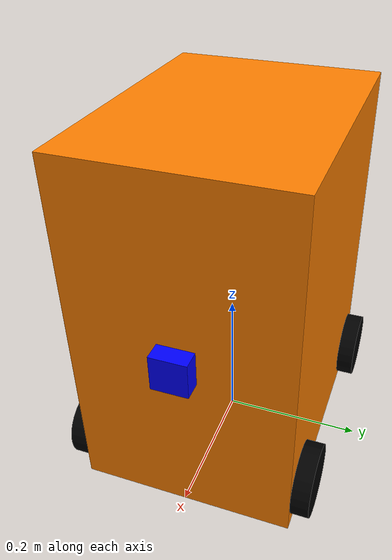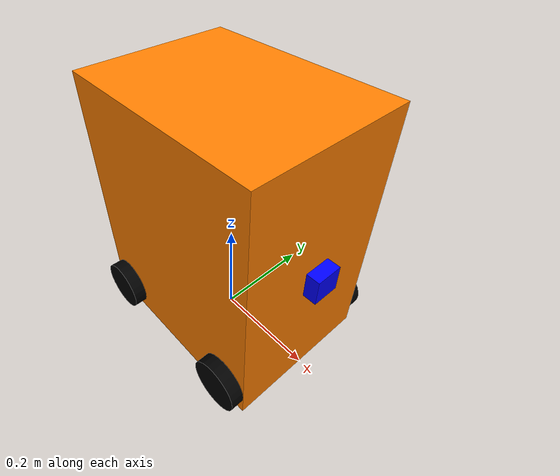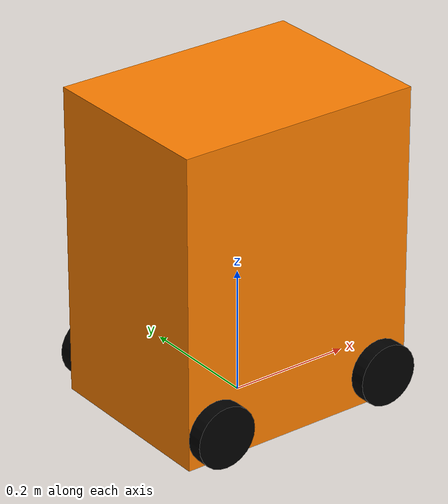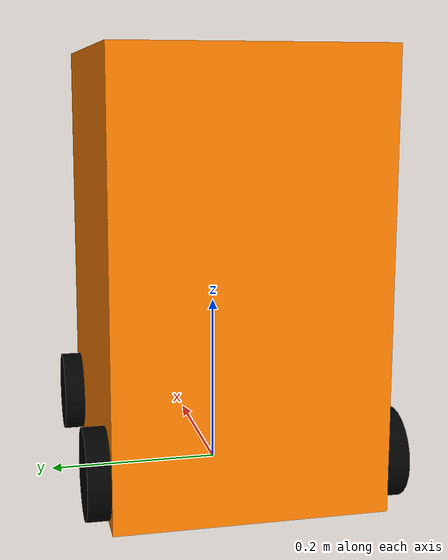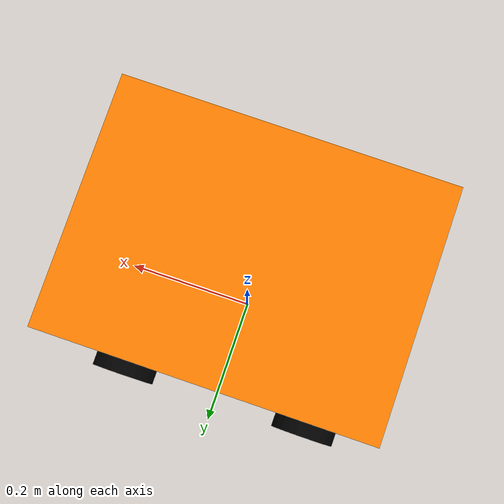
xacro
<?xml version="1.0"?>
<robot name="my_robot" xmlns:xacro="http://www.ros.org/wiki/xacro">

  <xacro:property name="body_length" value="0.4"/>
  <xacro:property name="body_width"  value="0.3"/>
  <xacro:property name="body_height" value="0.5"/>
  <xacro:property name="wheel_radius" value="0.05"/>
  <xacro:property name="wheel_length" value="0.05"/>
  <xacro:property name="wheel_y_offset" value="${body_width/2}"/>
  <xacro:property name="wheel_x_offset" value="${body_length/2}"/>
  <xacro:property name="wheel_z" value="${-body_height/2}"/>

  <!-- Materials for visualization -->
  <material name="orange">
    <color rgba="1 0.5 0 1"/>
  </material>
  <material name="black">
    <color rgba="0 0 0 1"/>
  </material>
  <material name="blue">
    <color rgba="0 0 1 1"/>
  </material>

  <!-- Base Link -->
  <link name="base_link">
    <visual>
      <origin xyz="0 0 0.25" rpy="0 0 0"/>
      <geometry>
        <box size="0.4 0.3 0.5"/>
      </geometry>
      <material name="orange"/>
    </visual>
    <collision>
      <origin xyz="0 0 0.25" rpy="0 0 0"/>
      <geometry>
        <box size="0.4 0.3 0.5"/>
      </geometry>
    </collision>
    <inertial>
      <mass value="10"/>
      <inertia ixx="0.416667" ixy="0" ixz="0" iyy="0.533333" iyz="0" izz="0.416667"/>
    </inertial>
  </link>

  <!-- Wheel Macro -->
  <xacro:macro name="wheel" params="name parent xyz">
    <link name="${name}_wheel">
      <visual>
        <origin xyz="0 0 0" rpy="${math.pi/2} 0 0"/>
        <geometry>
          <cylinder radius="0.05" length="0.05"/>
        </geometry>
        <material name="black"/>
      </visual>
      <collision>
        <origin xyz="0 0 0" rpy="${math.pi/2} 0 0"/>
        <geometry>
          <cylinder radius="0.05" length="0.05"/>
        </geometry>
      </collision>
      <inertial>
        <mass value="0.5"/>
        <inertia ixx="0.00052" ixy="0" ixz="0" iyy="0.00052" iyz="0" izz="0.001"/>
      </inertial>
    </link>

    <joint name="${name}_wheel_joint" type="continuous">
      <parent link="${parent}"/>
      <child link="${name}_wheel"/>
      <origin xyz="${xyz}" rpy="0 0 0"/>
      <axis xyz="0 1 0"/>
    </joint>

    <gazebo reference="${name}_wheel">
      <material>Gazebo/Black</material>
    </gazebo>
  </xacro:macro>

  <!-- Create Wheels -->
  <xacro:wheel name="front_left" parent="base_link" xyz="0.15 0.15 0.05"/>
  <xacro:wheel name="front_right" parent="base_link" xyz="0.15 -0.15 0.05"/>
  <xacro:wheel name="rear_left" parent="base_link" xyz="-0.15 0.15 0.05"/>
  <xacro:wheel name="rear_right" parent="base_link" xyz="-0.15 -0.15 0.05"/>

  <!-- RGBD Camera -->
  <link name="camera_link">
    <visual>
      <origin xyz="0 0 0" rpy="0 0 0"/>
      <geometry>
        <box size="0.05 0.05 0.05"/>
      </geometry>
      <material name="blue"/>
    </visual>
    <collision>
      <geometry>
        <box size="0.05 0.05 0.05"/>
      </geometry>
    </collision>
    <inertial>
      <mass value="0.1"/>
      <inertia ixx="0.00001" ixy="0" ixz="0" iyy="0.00001" iyz="0" izz="0.00001"/>
    </inertial>
  </link>

  <joint name="camera_joint" type="fixed">
    <parent link="base_link"/>
    <child link="camera_link"/>
    <origin xyz="0.2 0 0.25" rpy="0 0 0"/>
  </joint>

  <link name="imu_link">
    <visual>
      <geometry>
        <box size="0.02 0.02 0.02"/>
      </geometry>
      <origin xyz="0 0 0" rpy="0 0 0"/>
      <material name="red">
        <color rgba="1 0 0 1"/>
      </material>
    </visual>
  </link>
  <joint name="imu_joint" type="fixed">
    <parent link="base_link"/>
    <child link="imu_link"/>
    <origin xyz="0 0 0" rpy="0 0 0"/>
  </joint>

  <!-- Gazebo plugins：差速驱动 -->
  <gazebo>
    <plugin name="skid_steer_drive_controller" filename="libgazebo_ros_skid_steer_drive.so">
      <updateRate>100.0</updateRate>
      <leftFrontJoint>front_left_wheel_joint</leftFrontJoint>
      <rightFrontJoint>front_right_wheel_joint</rightFrontJoint>
      <leftRearJoint>rear_left_wheel_joint</leftRearJoint>
      <rightRearJoint>rear_right_wheel_joint</rightRearJoint>
      <wheelSeparation>0.25</wheelSeparation>
      <wheelDiameter>${wheel_radius*2}</wheelDiameter>
      <robotBaseFrame>base_footprint</robotBaseFrame>
      <torque>20</torque>
      <topicName>cmd_vel</topicName>
      <broadcastTF>true</broadcastTF>
    </plugin>
  </gazebo>

  <!-- Gazebo 插件：IMU -->
<gazebo reference="imu_link">
    <gravity>true</gravity>
    <sensor name="imu_sensor" type="imu">
      <always_on>true</always_on>
      <update_rate>100</update_rate>
      <visualize>true</visualize>
      <topic>__default_topic__</topic>
      <plugin filename="libgazebo_ros_imu_sensor.so" name="imu_plugin">
        <topicName>imu/data</topicName>
        <bodyName>imu_link</bodyName>
        <updateRateHZ>10.0</updateRateHZ>
        <gaussianNoise>0.0</gaussianNoise>
        <xyzOffset>0 0 0</xyzOffset>
        <rpyOffset>0 0 0</rpyOffset>
        <frameName>imu_link</frameName>
        <initialOrientationAsReference>false</initialOrientationAsReference>
      </plugin>
      <pose>0 0 0 0 0 0</pose>
    </sensor>
  </gazebo>

  <!-- Gazebo 插件：深度相机 -->
<xacro:property name="camera_name" value="camera_link"/>

<gazebo reference="camera_link">
  <sensor name="rgbd_camera" type="depth">
    <update_rate>20</update_rate>
    <camera>
      <horizontal_fov>1.047198</horizontal_fov>
      <image>
        <width>640</width>
        <height>480</height>
        <format>R8G8B8</format>
      </image>
      <clip>
        <near>0.05</near>
        <far>3</far>
      </clip>
    </camera>
    <plugin name="depth_controller" filename="libgazebo_ros_openni_kinect.so">
      <baseline>0.2</baseline>
      <alwaysOn>true</alwaysOn>
      <updateRate>20</updateRate>
      <cameraName>${camera_name}_ir</cameraName>
      <imageTopicName>/${camera_name}/color/image_raw</imageTopicName>
      <cameraInfoTopicName>/${camera_name}/color/camera_info</cameraInfoTopicName>
      <depthImageTopicName>/${camera_name}/depth/image_raw</depthImageTopicName>
      <depthImageInfoTopicName>/${camera_name}/depth/camera_info</depthImageInfoTopicName>
      <pointCloudTopicName>/${camera_name}/depth/points</pointCloudTopicName>
      <frameName>camera_link</frameName>
      <pointCloudCutoff>0.5</pointCloudCutoff>
      <pointCloudCutoffMax>3.0</pointCloudCutoffMax>
      <distortionK1>0.00000001</distortionK1>
      <distortionK2>0.00000001</distortionK2>
      <distortionK3>0.00000001</distortionK3>
      <distortionT1>0.00000001</distortionT1>
      <distortionT2>0.00000001</distortionT2>
      <CxPrime>0</CxPrime>
      <Cx>0</Cx>
      <Cy>0</Cy>
      <focalLength>0</focalLength>
      <hackBaseline>0</hackBaseline>
    </plugin>
  </sensor>
</gazebo>

</robot>
